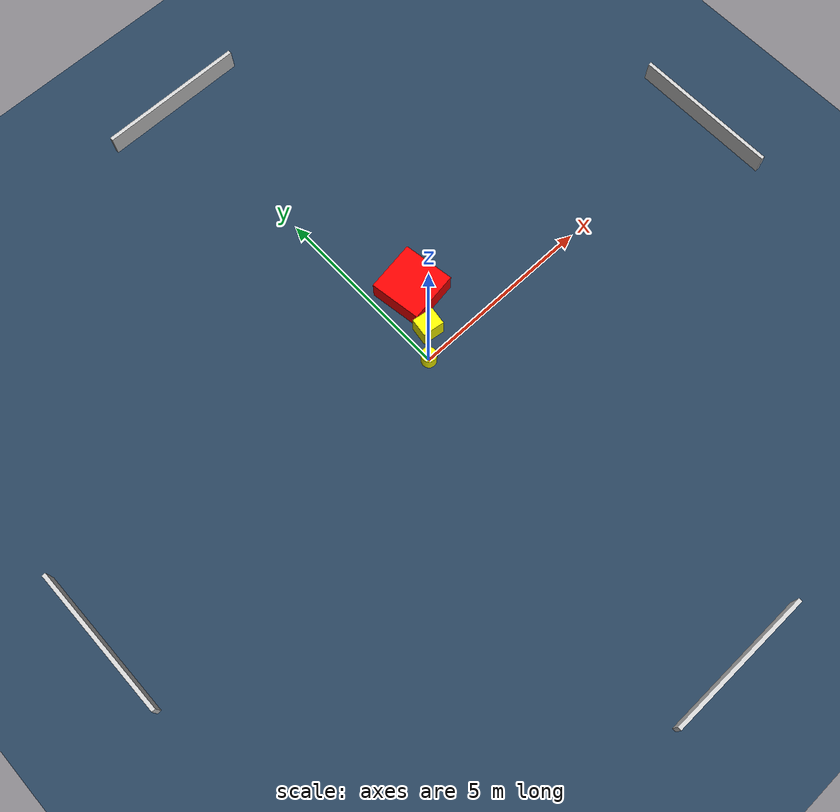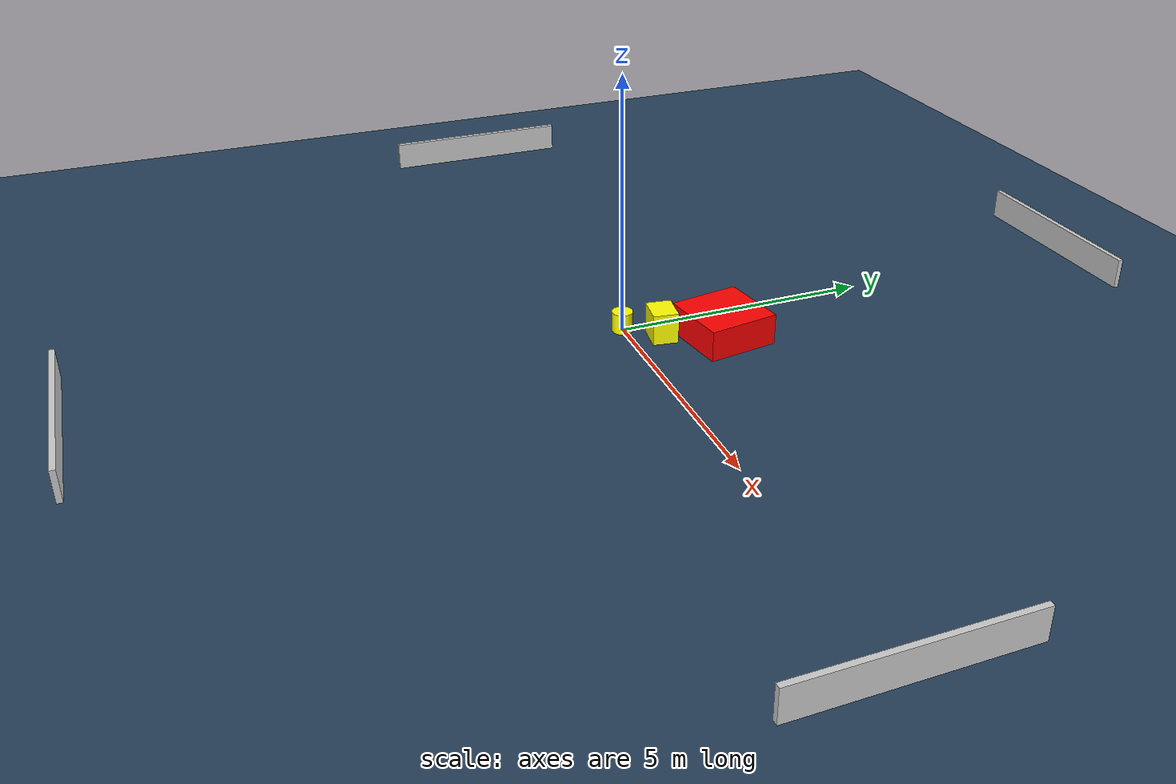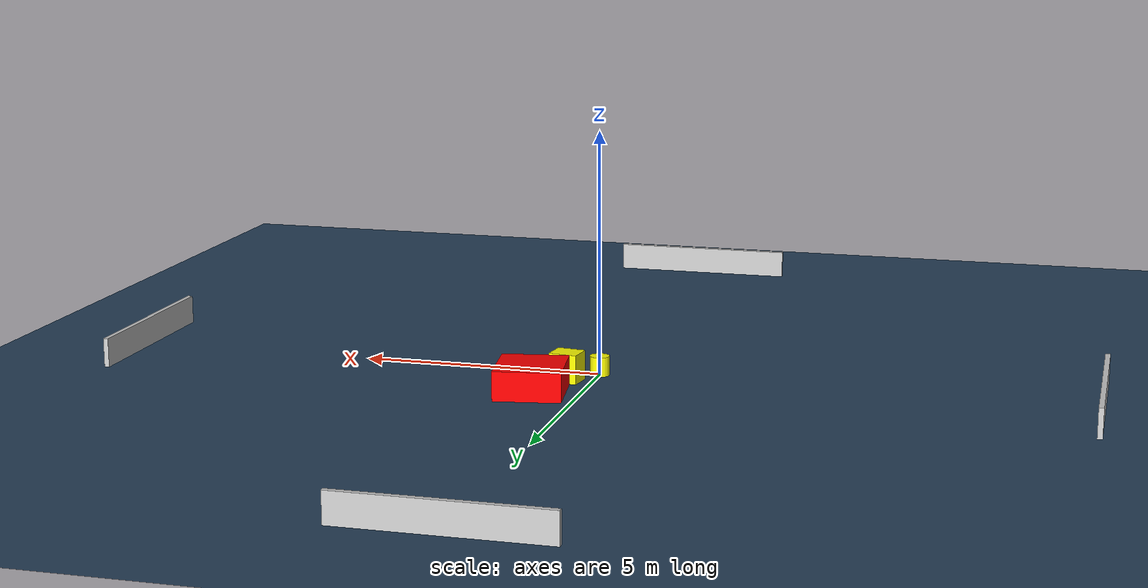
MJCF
<?xml version="1.0" ?>
<mujoco model="generated_environment">
  <option timestep="0.01" integrator="RK4" cone="elliptic"/>
  <default>
    <geom density="1"/>
  </default>
  <asset>
    <texture builtin="gradient" height="3072" name="skybox" rgb1="0.3 0.5 0.7" rgb2="0 0 0" type="skybox" width="512"/>
    <texture builtin="checker" height="300" name="groundplane" rgb1="0.2 0.3 0.4" rgb2="0.1 0.2 0.3" type="2d" width="300"/>
    <material name="groundplane" reflectance="0.2" texrepeat="5 5" texture="groundplane"/>
  </asset>
  <worldbody>
    <light dir="0 0 -1" directional="true" pos="0 0 1.5"/>
    <geom condim="3" friction="0.5 0.005 0.001" material="groundplane" name="floor" pos="0 0 0" size="0 0 0.05" type="plane"/>
    <body name="walls">
      <geom name="wall_1" condim="4" pos="-10.0 0.0 0.3" rgba="0.800000011920929 0.800000011920929 0.800000011920929 1.0" size="0.05 2.0 0.3" type="box"/>
      <geom name="wall_2" condim="4" pos="10.0 0.0 0.3" rgba="0.800000011920929 0.800000011920929 0.800000011920929 1.0" size="0.05 2.0 0.3" type="box"/>
      <geom name="wall_3" condim="4" pos="0.0 -10.0 0.3" rgba="0.800000011920929 0.800000011920929 0.800000011920929 1.0" size="2.0 0.05 0.3" type="box"/>
      <geom name="wall_4" condim="4" pos="0.0 10.0 0.3" rgba="0.800000011920929 0.800000011920929 0.800000011920929 1.0" size="2.0 0.05 0.3" type="box"/>
    </body>
    <body name="robot">
      <joint name="joint_x" type="slide" pos="0 0 0" axis="1 0 0"/>
      <joint name="joint_y" type="slide" pos="0 0 0" axis="0 1 0"/>
      <geom name="robot" type="cylinder" pos="0.0 0.0 0.2" size="0.2 0.2 0.0" mass="5.0" friction="1.0 0.005 0.0001" condim="4" rgba="1.0 1.0 0.0 1.0"/>
    </body>
    <body name="obstacle_1_movable">
      <geom name="obstacle_1_movable" condim="4" pos="0.5242367304063918 0.5891954504110463 0.3" euler="0 0 262.07814020218245" friction="0.0 0.005 0.001" rgba="1.0 1.0 0.0 1.0" size="0.24449656763248365 0.29136437035247487 0.3" type="box" mass="0.1"/>
      <joint type="free"/>
    </body>
    <body name="obstacle_2_static">
      <geom name="obstacle_2_static" condim="4" pos="0.9672632953401179 1.6512518844968345 0.3" euler="0 0 98.73995527668177" friction="0.0 0.005 0.001" rgba="1.0 0.0 0.0 1.0" size="0.6943382500215289 0.6812146774511838 0.3" type="box"/>
    </body>
  </worldbody>
  <actuator>
    <motor name="actuator_x" joint="joint_x" gear="1" ctrlrange="-1 1"/>
    <motor name="actuator_y" joint="joint_y" gear="1" ctrlrange="-1 1"/>
  </actuator>
</mujoco>
